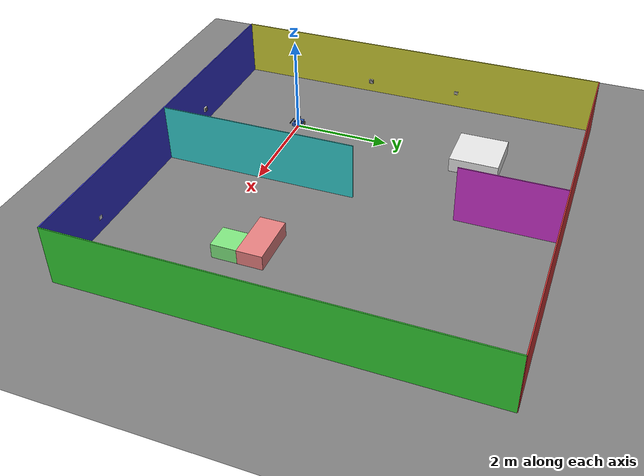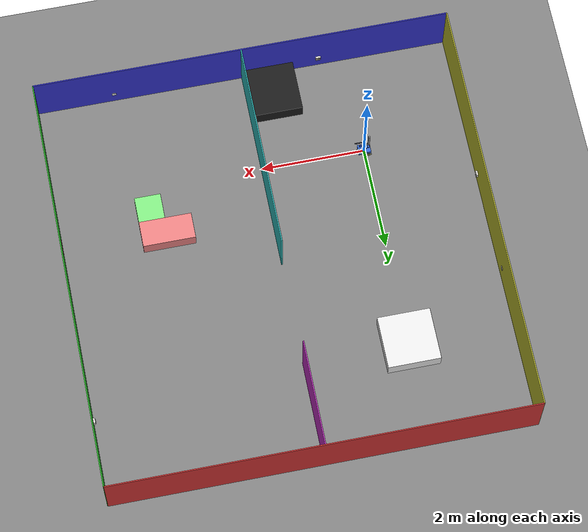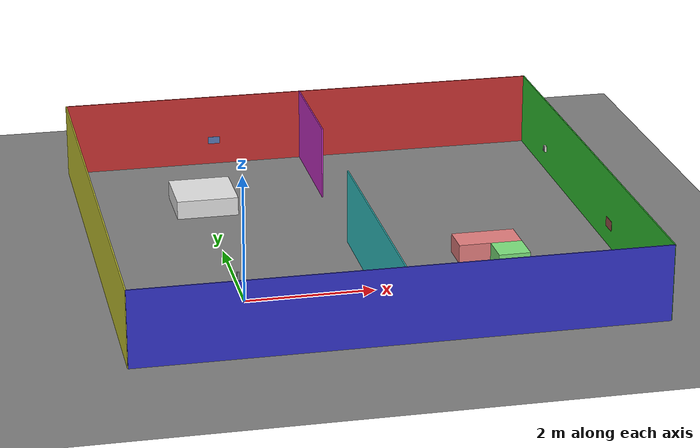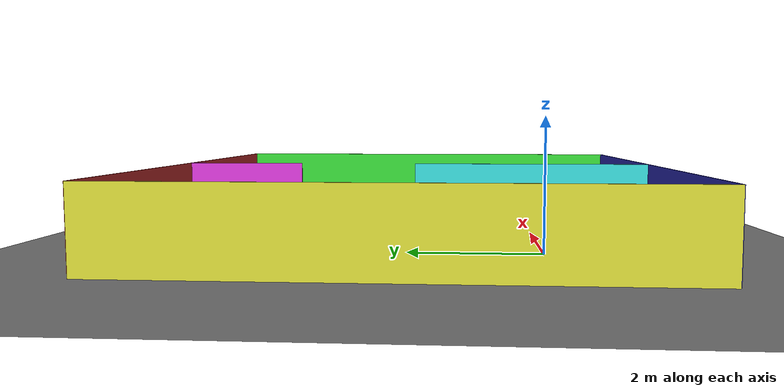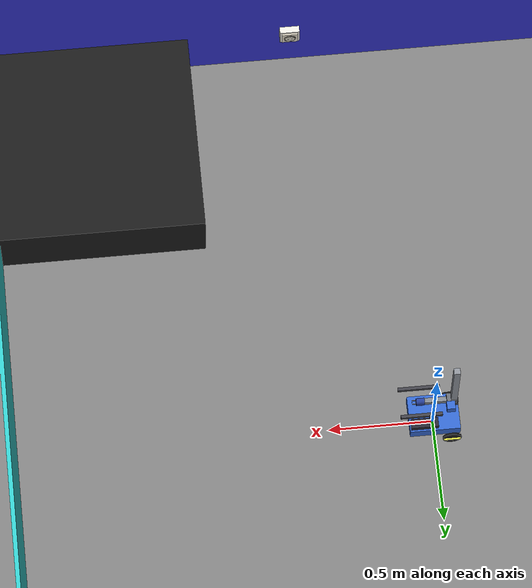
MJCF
<mujoco>
  <include file="world.xml"/>
  <worldbody>

    <!-- Light the whole area -->
    <light dir="0 0 -1" directional="true"/>

    <!--  Walls  -->

    <!-- Wall north (red)  -->
    <body name="wall-north" pos="2.0 6.0 0.6">
      <geom type="box" size="4.0 0.01 0.6" rgba="0.8 0.2 0.2 1"/>
    </body>

    <!-- Wall east (green) -->
    <body name="wall-east" pos="6.0 2.0 0.6">
      <geom type="box" size="0.01 4.0 0.6" rgba="0.2 0.8 0.2 1"/>
    </body>

    <!-- Wall south (blue)  -->
    <body name="wall-south" pos="2.0 -2.0 0.6">
      <geom type="box" size="4.0 0.01 0.6" rgba="0.2 0.2 0.8 1"/>
    </body>

    <!-- Wall west (yellow) -->
    <body name="wall-west" pos="-2.0 2.0 0.6">
      <geom type="box" size="0.01 4.0 0.6" rgba="0.8 0.8 0.2 1"/>
    </body>

    <!-- Wall divider top (purple) -->
    <body name="wall-divider-top" pos="2.0 5.0 0.6">
      <geom type="box" size="0.01 1.0 0.6" rgba="0.8 0.2 0.8 1"/>
    </body>

    <!-- Wall divider bottom (cyan) -->
    <body name="wall-divider-bottom" pos="2.0 0.0 0.6">
      <geom type="box" size="0.01 2.0 0.6" rgba="0.2 0.8 0.8 1"/>
    </body>

    <!--  Obstacles  -->

    <!-- Corner box (black) -->
    <body name="corner-box" pos="1.5 -1.5 0.15">
      <geom type="box" size="0.5 0.5 0.15" rgba="0.1 0.1 0.1 1"/>
    </body>

    <!-- Floor box (white) -->
    <body name="floor-box" pos="0.0 4 0.15">
      <geom type="box" size="0.5 0.5 0.15" rgba="0.9 0.9 0.9 1"/>
    </body>

    <!-- L box north (light red) -->
    <body name="L-box-north" pos="4.0 1 0.15">
      <geom type="box" size="0.5 0.25 0.15" rgba="0.9 0.5 0.5 1"/>
    </body>

    <!-- L box side (light green) -->
    <body name="L-box-side" pos="4.25 0.5 0.15">
      <geom type="box" size="0.25 0.25 0.15" rgba="0.5 0.9 0.5 1"/>
    </body>

    <!-- Dockable sockets: invisible collision geometry aligned with the
         visual outlets below (generated file — see header). -->
    <include file="schuko_sockets.xml"/>

    <!-- Outlet A: west wall, room 1. Bright white, slightly oversized plate. -->
    <body name="outlet_a" pos="-1.953 1.0 0.26" euler="0 0 0">
      <geom name="outlet_a_housing" type="box" size="0.0165 0.048 0.048"
            pos="-0.0205 0 0" rgba="0.91 0.90 0.87 1" contype="0" conaffinity="0"/>
      <geom name="outlet_a_plate" type="box" size="0.004 0.042 0.042"
            rgba="0.97 0.96 0.94 1" contype="0" conaffinity="0"/>
      <geom name="outlet_a_well" type="cylinder" size="0.028 0.0015" zaxis="1 0 0"
            pos="0.0045 0 0" rgba="0.78 0.77 0.74 1" contype="0" conaffinity="0"/>
      <geom name="outlet_a_wellfloor" type="cylinder" size="0.024 0.0015" zaxis="1 0 0"
            pos="0.0058 0 0" rgba="0.90 0.89 0.86 1" contype="0" conaffinity="0"/>
      <geom name="outlet_a_hole_l" type="cylinder" size="0.0024 0.0015" zaxis="1 0 0"
            pos="0.0068 0.0095 0" rgba="0.08 0.08 0.08 1" contype="0" conaffinity="0"/>
      <geom name="outlet_a_hole_r" type="cylinder" size="0.0024 0.0015" zaxis="1 0 0"
            pos="0.0068 -0.0095 0" rgba="0.08 0.08 0.08 1" contype="0" conaffinity="0"/>
      <geom name="outlet_a_clip_top" type="box" size="0.0018 0.005 0.0015"
            pos="0.0062 0 0.024" rgba="0.60 0.61 0.63 1" contype="0" conaffinity="0"/>
      <geom name="outlet_a_clip_bot" type="box" size="0.0018 0.005 0.0015"
            pos="0.0062 0 -0.024" rgba="0.60 0.61 0.63 1" contype="0" conaffinity="0"/>
    </body>

    <!-- Outlet B: south wall, room 1. Warm cream, slightly undersized plate. -->
    <body name="outlet_b" pos="0.5 -1.953 0.30" euler="0 0 90">
      <geom name="outlet_b_housing" type="box" size="0.0165 0.048 0.048"
            pos="-0.0205 0 0" rgba="0.91 0.90 0.87 1" contype="0" conaffinity="0"/>
      <geom name="outlet_b_plate" type="box" size="0.004 0.038 0.038"
            rgba="0.89 0.86 0.79 1" contype="0" conaffinity="0"/>
      <geom name="outlet_b_well" type="cylinder" size="0.028 0.0015" zaxis="1 0 0"
            pos="0.0045 0 0" rgba="0.70 0.68 0.62 1" contype="0" conaffinity="0"/>
      <geom name="outlet_b_wellfloor" type="cylinder" size="0.024 0.0015" zaxis="1 0 0"
            pos="0.0058 0 0" rgba="0.83 0.81 0.75 1" contype="0" conaffinity="0"/>
      <geom name="outlet_b_hole_l" type="cylinder" size="0.0024 0.0015" zaxis="1 0 0"
            pos="0.0068 0.0095 0" rgba="0.08 0.08 0.08 1" contype="0" conaffinity="0"/>
      <geom name="outlet_b_hole_r" type="cylinder" size="0.0024 0.0015" zaxis="1 0 0"
            pos="0.0068 -0.0095 0" rgba="0.08 0.08 0.08 1" contype="0" conaffinity="0"/>
      <geom name="outlet_b_clip_top" type="box" size="0.0018 0.005 0.0015"
            pos="0.0062 0 0.022" rgba="0.64 0.65 0.66 1" contype="0" conaffinity="0"/>
      <geom name="outlet_b_clip_bot" type="box" size="0.0018 0.005 0.0015"
            pos="0.0062 0 -0.022" rgba="0.64 0.65 0.66 1" contype="0" conaffinity="0"/>
    </body>

    <!-- Outlet C: east wall, room 2. Cool light gray, standard plate. -->
    <body name="outlet_c" pos="5.953 4.5 0.38" euler="0 0 180">
      <geom name="outlet_c_housing" type="box" size="0.0165 0.048 0.048"
            pos="-0.0205 0 0" rgba="0.91 0.90 0.87 1" contype="0" conaffinity="0"/>
      <geom name="outlet_c_plate" type="box" size="0.004 0.04 0.04"
            rgba="0.84 0.85 0.86 1" contype="0" conaffinity="0"/>
      <geom name="outlet_c_well" type="cylinder" size="0.028 0.0015" zaxis="1 0 0"
            pos="0.0045 0 0" rgba="0.66 0.67 0.69 1" contype="0" conaffinity="0"/>
      <geom name="outlet_c_wellfloor" type="cylinder" size="0.024 0.0015" zaxis="1 0 0"
            pos="0.0058 0 0" rgba="0.78 0.79 0.80 1" contype="0" conaffinity="0"/>
      <geom name="outlet_c_hole_l" type="cylinder" size="0.0024 0.0015" zaxis="1 0 0"
            pos="0.0068 0.0095 0" rgba="0.08 0.08 0.08 1" contype="0" conaffinity="0"/>
      <geom name="outlet_c_hole_r" type="cylinder" size="0.0024 0.0015" zaxis="1 0 0"
            pos="0.0068 -0.0095 0" rgba="0.08 0.08 0.08 1" contype="0" conaffinity="0"/>
      <geom name="outlet_c_clip_top" type="box" size="0.0018 0.005 0.0015"
            pos="0.0062 0 0.024" rgba="0.58 0.59 0.61 1" contype="0" conaffinity="0"/>
      <geom name="outlet_c_clip_bot" type="box" size="0.0018 0.005 0.0015"
            pos="0.0062 0 -0.024" rgba="0.58 0.59 0.61 1" contype="0" conaffinity="0"/>
    </body>

    <!--  Wall decoys: hard negatives, same species as training's.
          The detector must stay silent on all of these.  -->

    <!-- Light switch: west wall, room 1 (plate + rocker) -->
    <body name="decoy_switch_w" pos="-1.986 3.0 0.34" euler="0 0 0">
      <geom name="decoy_switch_w_plate" type="box" size="0.004 0.04 0.04"
            rgba="0.92 0.91 0.88 1" contype="0" conaffinity="0"/>
      <geom name="decoy_switch_w_rocker" type="box" size="0.004 0.018 0.026"
            pos="0.004 0 0" rgba="0.92 0.91 0.88 1" contype="0" conaffinity="0"/>
    </body>

    <!-- Blank plate: south wall, room 2 -->
    <body name="decoy_blank_s" pos="4.5 -1.986 0.28" euler="0 0 90">
      <geom name="decoy_blank_s_plate" type="box" size="0.004 0.04 0.04"
            rgba="0.88 0.88 0.90 1" contype="0" conaffinity="0"/>
    </body>

    <!-- Pictures: north wall room 1, east wall room 2 -->
    <body name="decoy_pic_n" pos="0.5 5.988 0.42" euler="0 0 270">
      <geom name="decoy_pic_n_canvas" type="box" size="0.002 0.10 0.06"
            rgba="0.35 0.48 0.72 1" contype="0" conaffinity="0"/>
    </body>
    <body name="decoy_pic_e" pos="5.988 1.0 0.36" euler="0 0 180">
      <geom name="decoy_pic_e_canvas" type="box" size="0.002 0.14 0.08"
            rgba="0.62 0.33 0.30 1" contype="0" conaffinity="0"/>
    </body>

  </worldbody>
</mujoco>

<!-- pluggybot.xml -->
<mujocoinclude>
  <visual><global offwidth="1280" offheight="720"/></visual>

  <worldbody>

    <!-- origin at axle height (aka wheel radius) -->
    <body name="pluggybot" pos="0 0 0.045">
      <freejoint />

      <!-- For the gyroscope  -->
      <site name="imu" pos="0 0 0.05"/>

      <geom
        name="chassis"
        type="box"
        size="0.12 0.09 0.03"
        pos="0 0 0.045"
        mass="0.9"
        rgba="0.2 0.4 0.8 1"
      />

      <geom
        name="battery"
        type="box"
        size="0.065 0.023 0.013"
        pos="0.05 0.06 0.092"
        mass="0.40"
        rgba="0.15 0.15 0.2 1"
      />

      <!--  Head  -->
      <body name="head" pos="-0.08 0 0.135">
        <geom
          name="head_mount"
          type="box"
          size="0.02 0.02 0.02"
          pos="0 0 0"
          mass="0.12"
          rgba="0.2 0.4 0.8 1"
        />

        <!--  Cameras  -->
        <!--  Decoding xyaxes="0 -1 0  0 0 1":
                image-right is body −y, image-up is body +z,
                which forces the viewing direction to be body +x
        -->
        <camera name="left_eye" pos="0.03 0.03 0" xyaxes="0 -1 0 0 0 1" fovy="41"/>
        <camera name="right_eye" pos="0.03 -0.03 0" xyaxes="0 -1 0 0 0 1" fovy="41"/>

      </body>

      <body name="left_wheel" pos="-0.08 0.105 0">
        <joint
          name="left_wheel_joint"
          type="hinge"
          axis="0 1 0"
          armature="0.012"
          damping="0.05"
        />
        <geom
          type="cylinder"
          size="0.045 0.005"
          zaxis="0 1 0"
          mass="0.05"
          rgba="0.1 0.1 0.1 1"
        />
        <!-- Spoke - purely visual, to see rotation  -->
        <geom
          type="box"
          size="0.04 0.013 0.004"
          mass="0.001"
          contype="0"
          conaffinity="0"
          rgba="1 1 0.3 1"
        />
      </body>

      <body name="right_wheel" pos="-0.08 -0.105 0">
        <joint
          name="right_wheel_joint"
          type="hinge"
          axis="0 1 0"
          armature="0.012"
          damping="0.05"
        />
        <geom
          type="cylinder"
          size="0.045 0.005"
          zaxis="0 1 0"
          mass="0.05"
          rgba="0.1 0.1 0.1 1"
        />
        <!-- Spoke - purely visual, to see rotation  -->
        <geom
          type="box"
          size="0.04 0.013 0.004"
          mass="0.001"
          contype="0"
          conaffinity="0"
          rgba="1 1 0.3 1"
        />
      </body>

      <geom
        name="caster"
        type="sphere"
        size="0.02"
        pos="0.10 0 -0.025"
        mass="0.02"
        condim="1"
        priority="1"
      />

      <!-- Mast: fixed column + lift motor block at its foot (igus NEMA11
           lead-screw class). Column top at body-local z=0.455. TBD masses. -->
      <geom name="mast" type="box" size="0.015 0.015 0.19"
            pos="-0.10 -0.05 0.265" mass="0.20" rgba="0.55 0.57 0.6 1"/>
      <geom name="lift_motor" type="box" size="0.015 0.02 0.02"
            pos="-0.105 -0.05 0.095" mass="0.15" rgba="0.3 0.3 0.32 1"/>

      <body name="carriage" pos="-0.10 -0.05 0.10">
        <joint name="lift_joint" type="slide" axis="0 0 1" range="0 0.31"
               damping="10"/>
        <geom name="carriage_block" type="box" size="0.025 0.02 0.022"
              pos="0.01 0 0.008" mass="0.25" rgba="0.4 0.42 0.45 1"/>

        <geom name="prong_l" type="box" size="0.10 0.008 0.008"
              pos="0.16 0.07 0" mass="0.01" friction="1.5" rgba="0.25 0.25 0.28 1"/>
        <geom name="prong_r" type="box" size="0.10 0.008 0.008"
              pos="0.16 -0.07 0" mass="0.01" friction="1.5" rgba="0.25 0.25 0.28 1"/>

        <camera name="dock_eye" pos="0.03 0 0.06" xyaxes="0 -1 0 0 0 1" fovy="41"/>

        <!-- Telescoping arm: short tube, 0.20 m stroke. Retracted, the plug
             tip sits at body-local +0.059 — safely behind the +0.12 bumper. -->
        <body name="arm" pos="0 0 0">
          <joint name="arm_joint" type="slide" axis="1 0 0" range="0 0.20"
                 damping="5"/>
          <geom name="arm_tube" type="box" size="0.06 0.012 0.012"
                pos="0.08 0 0" mass="0.12" rgba="0.5 0.52 0.55 1"/>

          <body name="plug" pos="0.14 0 0">
            <joint name="plug_lat_y" type="slide" axis="0 1 0" range="-0.02 0.02"
                   stiffness="150" damping="4" armature="1e-5"/>
            <joint name="plug_lat_z" type="slide" axis="0 0 1" range="-0.02 0.02"
                   stiffness="150" damping="4" armature="1e-5"/>
            <joint name="plug_rot_z" type="hinge" axis="0 0 1" range="-0.35 0.35"
                   stiffness="1.0" damping="0.05" armature="1e-5"/>
            <joint name="plug_rot_y" type="hinge" axis="0 1 0" range="-0.35 0.35"
                   stiffness="1.0" damping="0.05" armature="1e-5"/>
            <geom name="plug_body" type="cylinder" size="0.01775 0.020"
                  zaxis="1 0 0" pos="0.02 0 0" mass="0.05" rgba="0.15 0.25 0.6 1"/>
            <geom name="plug_pin_l" type="capsule" size="0.0024"
                  fromto="0.0424 0.0095 0 0.0566 0.0095 0" mass="0.003"
                  rgba="0.75 0.75 0.78 1"/>
            <geom name="plug_pin_r" type="capsule" size="0.0024"
                  fromto="0.0424 -0.0095 0 0.0566 -0.0095 0" mass="0.003"
                  rgba="0.75 0.75 0.78 1"/>
            <site name="plug_face" pos="0.04 0 0" size="0.002"/>
            <site name="plug_tip" pos="0.059 0 0" size="0.002"/>
          </body>
        </body>
      </body>

    </body>
  </worldbody>

  <!-- The arm tube passes beside the mast on a carriage bracket in the real
       igus unit; as primitives on one axis they would interpenetrate. -->
  <contact>
    <exclude body1="pluggybot" body2="arm"/>
  </contact>

  <actuator>
    <velocity
      name="left_motor"
      joint="left_wheel_joint"
      kv="0.5"
      ctrlrange="-21 21"
      forcerange="-2.06 2.06"
    />
    <velocity
      name="right_motor"
      joint="right_wheel_joint"
      kv="0.5"
      ctrlrange="-21 21"
      forcerange="-2.06 2.06"
    />
    <!-- Lift + arm: position servos (a stepper lead-screw IS a position
         device). forcerange from the igus DLE-LA-0001 spec: 50 N thrust.
         ctrl is the joint target in meters. -->
    <position
      name="lift"
      joint="lift_joint"
      kp="1200"
      kv="60"
      ctrlrange="0 0.31"
      forcerange="-50 50"
    />
    <position
      name="arm"
      joint="arm_joint"
      kp="1200"
      kv="60"
      ctrlrange="0 0.20"
      forcerange="-50 50"
    />
  </actuator>

  <sensor>
    <gyro name="imu_gyro" site="imu"/>
  </sensor>

</mujocoinclude>

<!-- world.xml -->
<mujoco>

  <!-- Needed to fix wheel physics
        https://mujoco.readthedocs.io/en/stable/computation/index.html#numerical-integration
  -->
  <option integrator="implicitfast"/>

  <include file="pluggybot.xml" />

  <worldbody>

    <!-- directional light -->
    <light pos="0 0 3" dir="0 0 -1"/>

    <!-- The ground -->
    <geom name="floor" type="plane" size="10 10 0.1" rgba="0.5 0.5 0.5 1"/>

  </worldbody>
</mujoco>

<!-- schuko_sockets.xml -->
<mujocoinclude>
  <body name="socket_a" pos="-1.9530 1.0000 0.2600" euler="0 0 0.0">
      <geom name="socket_a_wall0" type="box" size="0.00850 0.00200 0.00723" pos="-0.00850 0.02050 0.00000" euler="0.00 0 0.00" rgba="0.5 0.5 0.5 0" solref="0.005 1" friction="0.3"/>
      <geom name="socket_a_wall1" type="box" size="0.00850 0.00200 0.00723" pos="-0.00850 0.01775 0.01025" euler="30.00 0 0.00" rgba="0.5 0.5 0.5 0" solref="0.005 1" friction="0.3"/>
      <geom name="socket_a_wall2" type="box" size="0.00850 0.00200 0.00723" pos="-0.00850 0.01025 0.01775" euler="60.00 0 0.00" rgba="0.5 0.5 0.5 0" solref="0.005 1" friction="0.3"/>
      <geom name="socket_a_wall3" type="box" size="0.00850 0.00200 0.00723" pos="-0.00850 0.00000 0.02050" euler="90.00 0 0.00" rgba="0.5 0.5 0.5 0" solref="0.005 1" friction="0.3"/>
      <geom name="socket_a_wall4" type="box" size="0.00850 0.00200 0.00723" pos="-0.00850 -0.01025 0.01775" euler="120.00 0 0.00" rgba="0.5 0.5 0.5 0" solref="0.005 1" friction="0.3"/>
      <geom name="socket_a_wall5" type="box" size="0.00850 0.00200 0.00723" pos="-0.00850 -0.01775 0.01025" euler="150.00 0 0.00" rgba="0.5 0.5 0.5 0" solref="0.005 1" friction="0.3"/>
      <geom name="socket_a_wall6" type="box" size="0.00850 0.00200 0.00723" pos="-0.00850 -0.02050 0.00000" euler="180.00 0 0.00" rgba="0.5 0.5 0.5 0" solref="0.005 1" friction="0.3"/>
      <geom name="socket_a_wall7" type="box" size="0.00850 0.00200 0.00723" pos="-0.00850 -0.01775 -0.01025" euler="210.00 0 0.00" rgba="0.5 0.5 0.5 0" solref="0.005 1" friction="0.3"/>
      <geom name="socket_a_wall8" type="box" size="0.00850 0.00200 0.00723" pos="-0.00850 -0.01025 -0.01775" euler="240.00 0 0.00" rgba="0.5 0.5 0.5 0" solref="0.005 1" friction="0.3"/>
      <geom name="socket_a_wall9" type="box" size="0.00850 0.00200 0.00723" pos="-0.00850 -0.00000 -0.02050" euler="270.00 0 0.00" rgba="0.5 0.5 0.5 0" solref="0.005 1" friction="0.3"/>
      <geom name="socket_a_wall10" type="box" size="0.00850 0.00200 0.00723" pos="-0.00850 0.01025 -0.01775" euler="300.00 0 0.00" rgba="0.5 0.5 0.5 0" solref="0.005 1" friction="0.3"/>
      <geom name="socket_a_wall11" type="box" size="0.00850 0.00200 0.00723" pos="-0.00850 0.01775 -0.01025" euler="330.00 0 0.00" rgba="0.5 0.5 0.5 0" solref="0.005 1" friction="0.3"/>
      <geom name="socket_a_funnel0" type="box" size="0.00141 0.00200 0.00659" pos="0.00100 0.02150 0.00000" euler="0.00 0 45.00" rgba="0.5 0.5 0.5 0" solref="0.005 1" friction="0.3"/>
      <geom name="socket_a_funnel1" type="box" size="0.00141 0.00200 0.00659" pos="0.00100 0.01862 0.01075" euler="30.00 0 45.00" rgba="0.5 0.5 0.5 0" solref="0.005 1" friction="0.3"/>
      <geom name="socket_a_funnel2" type="box" size="0.00141 0.00200 0.00659" pos="0.00100 0.01075 0.01862" euler="60.00 0 45.00" rgba="0.5 0.5 0.5 0" solref="0.005 1" friction="0.3"/>
      <geom name="socket_a_funnel3" type="box" size="0.00141 0.00200 0.00659" pos="0.00100 0.00000 0.02150" euler="90.00 0 45.00" rgba="0.5 0.5 0.5 0" solref="0.005 1" friction="0.3"/>
      <geom name="socket_a_funnel4" type="box" size="0.00141 0.00200 0.00659" pos="0.00100 -0.01075 0.01862" euler="120.00 0 45.00" rgba="0.5 0.5 0.5 0" solref="0.005 1" friction="0.3"/>
      <geom name="socket_a_funnel5" type="box" size="0.00141 0.00200 0.00659" pos="0.00100 -0.01862 0.01075" euler="150.00 0 45.00" rgba="0.5 0.5 0.5 0" solref="0.005 1" friction="0.3"/>
      <geom name="socket_a_funnel6" type="box" size="0.00141 0.00200 0.00659" pos="0.00100 -0.02150 0.00000" euler="180.00 0 45.00" rgba="0.5 0.5 0.5 0" solref="0.005 1" friction="0.3"/>
      <geom name="socket_a_funnel7" type="box" size="0.00141 0.00200 0.00659" pos="0.00100 -0.01862 -0.01075" euler="210.00 0 45.00" rgba="0.5 0.5 0.5 0" solref="0.005 1" friction="0.3"/>
      <geom name="socket_a_funnel8" type="box" size="0.00141 0.00200 0.00659" pos="0.00100 -0.01075 -0.01862" euler="240.00 0 45.00" rgba="0.5 0.5 0.5 0" solref="0.005 1" friction="0.3"/>
      <geom name="socket_a_funnel9" type="box" size="0.00141 0.00200 0.00659" pos="0.00100 -0.00000 -0.02150" euler="270.00 0 45.00" rgba="0.5 0.5 0.5 0" solref="0.005 1" friction="0.3"/>
      <geom name="socket_a_funnel10" type="box" size="0.00141 0.00200 0.00659" pos="0.00100 0.01075 -0.01862" euler="300.00 0 45.00" rgba="0.5 0.5 0.5 0" solref="0.005 1" friction="0.3"/>
      <geom name="socket_a_funnel11" type="box" size="0.00141 0.00200 0.00659" pos="0.00100 0.01862 -0.01075" euler="330.00 0 45.00" rgba="0.5 0.5 0.5 0" solref="0.005 1" friction="0.3"/>
      <geom name="socket_a_floor_top" type="box" size="0.01 0.03 0.01360"
            pos="-0.02700 0 0.01640" rgba="0.5 0.5 0.5 0" solref="0.005 1" friction="0.3"/>
      <geom name="socket_a_floor_bot" type="box" size="0.01 0.03 0.01360"
            pos="-0.02700 0 -0.01640" rgba="0.5 0.5 0.5 0" solref="0.005 1" friction="0.3"/>
      <geom name="socket_a_floor_mid" type="box" size="0.01 0.00670 0.00280"
            pos="-0.02700 0 0" rgba="0.5 0.5 0.5 0" solref="0.005 1" friction="0.3"/>
      <geom name="socket_a_floor_l" type="box" size="0.01 0.00885 0.00280"
            pos="-0.02700 0.02115 0" rgba="0.5 0.5 0.5 0" solref="0.005 1" friction="0.3"/>
      <geom name="socket_a_floor_r" type="box" size="0.01 0.00885 0.00280"
            pos="-0.02700 -0.02115 0" rgba="0.5 0.5 0.5 0" solref="0.005 1" friction="0.3"/>
      <geom name="socket_a_plate_t" type="box" size="0.001 0.055 0.01675"
            pos="0.00300 0 0.03825" rgba="0.5 0.5 0.5 0" solref="0.005 1" friction="0.3"/>
      <geom name="socket_a_plate_b" type="box" size="0.001 0.055 0.01675"
            pos="0.00300 0 -0.03825" rgba="0.5 0.5 0.5 0" solref="0.005 1" friction="0.3"/>
      <geom name="socket_a_plate_l" type="box" size="0.001 0.01675 0.02150"
            pos="0.00300 0.03825 0" rgba="0.5 0.5 0.5 0" solref="0.005 1" friction="0.3"/>
      <geom name="socket_a_plate_r" type="box" size="0.001 0.01675 0.02150"
            pos="0.00300 -0.03825 0" rgba="0.5 0.5 0.5 0" solref="0.005 1" friction="0.3"/>
  </body>
  <body name="socket_b" pos="0.5000 -1.9530 0.3000" euler="0 0 90.0">
      <geom name="socket_b_wall0" type="box" size="0.00850 0.00200 0.00723" pos="-0.00850 0.02050 0.00000" euler="0.00 0 0.00" rgba="0.5 0.5 0.5 0" solref="0.005 1" friction="0.3"/>
      <geom name="socket_b_wall1" type="box" size="0.00850 0.00200 0.00723" pos="-0.00850 0.01775 0.01025" euler="30.00 0 0.00" rgba="0.5 0.5 0.5 0" solref="0.005 1" friction="0.3"/>
      <geom name="socket_b_wall2" type="box" size="0.00850 0.00200 0.00723" pos="-0.00850 0.01025 0.01775" euler="60.00 0 0.00" rgba="0.5 0.5 0.5 0" solref="0.005 1" friction="0.3"/>
      <geom name="socket_b_wall3" type="box" size="0.00850 0.00200 0.00723" pos="-0.00850 0.00000 0.02050" euler="90.00 0 0.00" rgba="0.5 0.5 0.5 0" solref="0.005 1" friction="0.3"/>
      <geom name="socket_b_wall4" type="box" size="0.00850 0.00200 0.00723" pos="-0.00850 -0.01025 0.01775" euler="120.00 0 0.00" rgba="0.5 0.5 0.5 0" solref="0.005 1" friction="0.3"/>
      <geom name="socket_b_wall5" type="box" size="0.00850 0.00200 0.00723" pos="-0.00850 -0.01775 0.01025" euler="150.00 0 0.00" rgba="0.5 0.5 0.5 0" solref="0.005 1" friction="0.3"/>
      <geom name="socket_b_wall6" type="box" size="0.00850 0.00200 0.00723" pos="-0.00850 -0.02050 0.00000" euler="180.00 0 0.00" rgba="0.5 0.5 0.5 0" solref="0.005 1" friction="0.3"/>
      <geom name="socket_b_wall7" type="box" size="0.00850 0.00200 0.00723" pos="-0.00850 -0.01775 -0.01025" euler="210.00 0 0.00" rgba="0.5 0.5 0.5 0" solref="0.005 1" friction="0.3"/>
      <geom name="socket_b_wall8" type="box" size="0.00850 0.00200 0.00723" pos="-0.00850 -0.01025 -0.01775" euler="240.00 0 0.00" rgba="0.5 0.5 0.5 0" solref="0.005 1" friction="0.3"/>
      <geom name="socket_b_wall9" type="box" size="0.00850 0.00200 0.00723" pos="-0.00850 -0.00000 -0.02050" euler="270.00 0 0.00" rgba="0.5 0.5 0.5 0" solref="0.005 1" friction="0.3"/>
      <geom name="socket_b_wall10" type="box" size="0.00850 0.00200 0.00723" pos="-0.00850 0.01025 -0.01775" euler="300.00 0 0.00" rgba="0.5 0.5 0.5 0" solref="0.005 1" friction="0.3"/>
      <geom name="socket_b_wall11" type="box" size="0.00850 0.00200 0.00723" pos="-0.00850 0.01775 -0.01025" euler="330.00 0 0.00" rgba="0.5 0.5 0.5 0" solref="0.005 1" friction="0.3"/>
      <geom name="socket_b_funnel0" type="box" size="0.00141 0.00200 0.00659" pos="0.00100 0.02150 0.00000" euler="0.00 0 45.00" rgba="0.5 0.5 0.5 0" solref="0.005 1" friction="0.3"/>
      <geom name="socket_b_funnel1" type="box" size="0.00141 0.00200 0.00659" pos="0.00100 0.01862 0.01075" euler="30.00 0 45.00" rgba="0.5 0.5 0.5 0" solref="0.005 1" friction="0.3"/>
      <geom name="socket_b_funnel2" type="box" size="0.00141 0.00200 0.00659" pos="0.00100 0.01075 0.01862" euler="60.00 0 45.00" rgba="0.5 0.5 0.5 0" solref="0.005 1" friction="0.3"/>
      <geom name="socket_b_funnel3" type="box" size="0.00141 0.00200 0.00659" pos="0.00100 0.00000 0.02150" euler="90.00 0 45.00" rgba="0.5 0.5 0.5 0" solref="0.005 1" friction="0.3"/>
      <geom name="socket_b_funnel4" type="box" size="0.00141 0.00200 0.00659" pos="0.00100 -0.01075 0.01862" euler="120.00 0 45.00" rgba="0.5 0.5 0.5 0" solref="0.005 1" friction="0.3"/>
      <geom name="socket_b_funnel5" type="box" size="0.00141 0.00200 0.00659" pos="0.00100 -0.01862 0.01075" euler="150.00 0 45.00" rgba="0.5 0.5 0.5 0" solref="0.005 1" friction="0.3"/>
      <geom name="socket_b_funnel6" type="box" size="0.00141 0.00200 0.00659" pos="0.00100 -0.02150 0.00000" euler="180.00 0 45.00" rgba="0.5 0.5 0.5 0" solref="0.005 1" friction="0.3"/>
      <geom name="socket_b_funnel7" type="box" size="0.00141 0.00200 0.00659" pos="0.00100 -0.01862 -0.01075" euler="210.00 0 45.00" rgba="0.5 0.5 0.5 0" solref="0.005 1" friction="0.3"/>
      <geom name="socket_b_funnel8" type="box" size="0.00141 0.00200 0.00659" pos="0.00100 -0.01075 -0.01862" euler="240.00 0 45.00" rgba="0.5 0.5 0.5 0" solref="0.005 1" friction="0.3"/>
      <geom name="socket_b_funnel9" type="box" size="0.00141 0.00200 0.00659" pos="0.00100 -0.00000 -0.02150" euler="270.00 0 45.00" rgba="0.5 0.5 0.5 0" solref="0.005 1" friction="0.3"/>
      <geom name="socket_b_funnel10" type="box" size="0.00141 0.00200 0.00659" pos="0.00100 0.01075 -0.01862" euler="300.00 0 45.00" rgba="0.5 0.5 0.5 0" solref="0.005 1" friction="0.3"/>
      <geom name="socket_b_funnel11" type="box" size="0.00141 0.00200 0.00659" pos="0.00100 0.01862 -0.01075" euler="330.00 0 45.00" rgba="0.5 0.5 0.5 0" solref="0.005 1" friction="0.3"/>
      <geom name="socket_b_floor_top" type="box" size="0.01 0.03 0.01360"
            pos="-0.02700 0 0.01640" rgba="0.5 0.5 0.5 0" solref="0.005 1" friction="0.3"/>
      <geom name="socket_b_floor_bot" type="box" size="0.01 0.03 0.01360"
            pos="-0.02700 0 -0.01640" rgba="0.5 0.5 0.5 0" solref="0.005 1" friction="0.3"/>
      <geom name="socket_b_floor_mid" type="box" size="0.01 0.00670 0.00280"
            pos="-0.02700 0 0" rgba="0.5 0.5 0.5 0" solref="0.005 1" friction="0.3"/>
      <geom name="socket_b_floor_l" type="box" size="0.01 0.00885 0.00280"
            pos="-0.02700 0.02115 0" rgba="0.5 0.5 0.5 0" solref="0.005 1" friction="0.3"/>
      <geom name="socket_b_floor_r" type="box" size="0.01 0.00885 0.00280"
            pos="-0.02700 -0.02115 0" rgba="0.5 0.5 0.5 0" solref="0.005 1" friction="0.3"/>
      <geom name="socket_b_plate_t" type="box" size="0.001 0.055 0.01675"
            pos="0.00300 0 0.03825" rgba="0.5 0.5 0.5 0" solref="0.005 1" friction="0.3"/>
      <geom name="socket_b_plate_b" type="box" size="0.001 0.055 0.01675"
            pos="0.00300 0 -0.03825" rgba="0.5 0.5 0.5 0" solref="0.005 1" friction="0.3"/>
      <geom name="socket_b_plate_l" type="box" size="0.001 0.01675 0.02150"
            pos="0.00300 0.03825 0" rgba="0.5 0.5 0.5 0" solref="0.005 1" friction="0.3"/>
      <geom name="socket_b_plate_r" type="box" size="0.001 0.01675 0.02150"
            pos="0.00300 -0.03825 0" rgba="0.5 0.5 0.5 0" solref="0.005 1" friction="0.3"/>
  </body>
  <body name="socket_c" pos="5.9530 4.5000 0.3800" euler="0 0 180.0">
      <geom name="socket_c_wall0" type="box" size="0.00850 0.00200 0.00723" pos="-0.00850 0.02050 0.00000" euler="0.00 0 0.00" rgba="0.5 0.5 0.5 0" solref="0.005 1" friction="0.3"/>
      <geom name="socket_c_wall1" type="box" size="0.00850 0.00200 0.00723" pos="-0.00850 0.01775 0.01025" euler="30.00 0 0.00" rgba="0.5 0.5 0.5 0" solref="0.005 1" friction="0.3"/>
      <geom name="socket_c_wall2" type="box" size="0.00850 0.00200 0.00723" pos="-0.00850 0.01025 0.01775" euler="60.00 0 0.00" rgba="0.5 0.5 0.5 0" solref="0.005 1" friction="0.3"/>
      <geom name="socket_c_wall3" type="box" size="0.00850 0.00200 0.00723" pos="-0.00850 0.00000 0.02050" euler="90.00 0 0.00" rgba="0.5 0.5 0.5 0" solref="0.005 1" friction="0.3"/>
      <geom name="socket_c_wall4" type="box" size="0.00850 0.00200 0.00723" pos="-0.00850 -0.01025 0.01775" euler="120.00 0 0.00" rgba="0.5 0.5 0.5 0" solref="0.005 1" friction="0.3"/>
      <geom name="socket_c_wall5" type="box" size="0.00850 0.00200 0.00723" pos="-0.00850 -0.01775 0.01025" euler="150.00 0 0.00" rgba="0.5 0.5 0.5 0" solref="0.005 1" friction="0.3"/>
      <geom name="socket_c_wall6" type="box" size="0.00850 0.00200 0.00723" pos="-0.00850 -0.02050 0.00000" euler="180.00 0 0.00" rgba="0.5 0.5 0.5 0" solref="0.005 1" friction="0.3"/>
      <geom name="socket_c_wall7" type="box" size="0.00850 0.00200 0.00723" pos="-0.00850 -0.01775 -0.01025" euler="210.00 0 0.00" rgba="0.5 0.5 0.5 0" solref="0.005 1" friction="0.3"/>
      <geom name="socket_c_wall8" type="box" size="0.00850 0.00200 0.00723" pos="-0.00850 -0.01025 -0.01775" euler="240.00 0 0.00" rgba="0.5 0.5 0.5 0" solref="0.005 1" friction="0.3"/>
      <geom name="socket_c_wall9" type="box" size="0.00850 0.00200 0.00723" pos="-0.00850 -0.00000 -0.02050" euler="270.00 0 0.00" rgba="0.5 0.5 0.5 0" solref="0.005 1" friction="0.3"/>
      <geom name="socket_c_wall10" type="box" size="0.00850 0.00200 0.00723" pos="-0.00850 0.01025 -0.01775" euler="300.00 0 0.00" rgba="0.5 0.5 0.5 0" solref="0.005 1" friction="0.3"/>
      <geom name="socket_c_wall11" type="box" size="0.00850 0.00200 0.00723" pos="-0.00850 0.01775 -0.01025" euler="330.00 0 0.00" rgba="0.5 0.5 0.5 0" solref="0.005 1" friction="0.3"/>
      <geom name="socket_c_funnel0" type="box" size="0.00141 0.00200 0.00659" pos="0.00100 0.02150 0.00000" euler="0.00 0 45.00" rgba="0.5 0.5 0.5 0" solref="0.005 1" friction="0.3"/>
      <geom name="socket_c_funnel1" type="box" size="0.00141 0.00200 0.00659" pos="0.00100 0.01862 0.01075" euler="30.00 0 45.00" rgba="0.5 0.5 0.5 0" solref="0.005 1" friction="0.3"/>
      <geom name="socket_c_funnel2" type="box" size="0.00141 0.00200 0.00659" pos="0.00100 0.01075 0.01862" euler="60.00 0 45.00" rgba="0.5 0.5 0.5 0" solref="0.005 1" friction="0.3"/>
      <geom name="socket_c_funnel3" type="box" size="0.00141 0.00200 0.00659" pos="0.00100 0.00000 0.02150" euler="90.00 0 45.00" rgba="0.5 0.5 0.5 0" solref="0.005 1" friction="0.3"/>
      <geom name="socket_c_funnel4" type="box" size="0.00141 0.00200 0.00659" pos="0.00100 -0.01075 0.01862" euler="120.00 0 45.00" rgba="0.5 0.5 0.5 0" solref="0.005 1" friction="0.3"/>
      <geom name="socket_c_funnel5" type="box" size="0.00141 0.00200 0.00659" pos="0.00100 -0.01862 0.01075" euler="150.00 0 45.00" rgba="0.5 0.5 0.5 0" solref="0.005 1" friction="0.3"/>
      <geom name="socket_c_funnel6" type="box" size="0.00141 0.00200 0.00659" pos="0.00100 -0.02150 0.00000" euler="180.00 0 45.00" rgba="0.5 0.5 0.5 0" solref="0.005 1" friction="0.3"/>
      <geom name="socket_c_funnel7" type="box" size="0.00141 0.00200 0.00659" pos="0.00100 -0.01862 -0.01075" euler="210.00 0 45.00" rgba="0.5 0.5 0.5 0" solref="0.005 1" friction="0.3"/>
      <geom name="socket_c_funnel8" type="box" size="0.00141 0.00200 0.00659" pos="0.00100 -0.01075 -0.01862" euler="240.00 0 45.00" rgba="0.5 0.5 0.5 0" solref="0.005 1" friction="0.3"/>
      <geom name="socket_c_funnel9" type="box" size="0.00141 0.00200 0.00659" pos="0.00100 -0.00000 -0.02150" euler="270.00 0 45.00" rgba="0.5 0.5 0.5 0" solref="0.005 1" friction="0.3"/>
      <geom name="socket_c_funnel10" type="box" size="0.00141 0.00200 0.00659" pos="0.00100 0.01075 -0.01862" euler="300.00 0 45.00" rgba="0.5 0.5 0.5 0" solref="0.005 1" friction="0.3"/>
      <geom name="socket_c_funnel11" type="box" size="0.00141 0.00200 0.00659" pos="0.00100 0.01862 -0.01075" euler="330.00 0 45.00" rgba="0.5 0.5 0.5 0" solref="0.005 1" friction="0.3"/>
      <geom name="socket_c_floor_top" type="box" size="0.01 0.03 0.01360"
            pos="-0.02700 0 0.01640" rgba="0.5 0.5 0.5 0" solref="0.005 1" friction="0.3"/>
      <geom name="socket_c_floor_bot" type="box" size="0.01 0.03 0.01360"
            pos="-0.02700 0 -0.01640" rgba="0.5 0.5 0.5 0" solref="0.005 1" friction="0.3"/>
      <geom name="socket_c_floor_mid" type="box" size="0.01 0.00670 0.00280"
            pos="-0.02700 0 0" rgba="0.5 0.5 0.5 0" solref="0.005 1" friction="0.3"/>
      <geom name="socket_c_floor_l" type="box" size="0.01 0.00885 0.00280"
            pos="-0.02700 0.02115 0" rgba="0.5 0.5 0.5 0" solref="0.005 1" friction="0.3"/>
      <geom name="socket_c_floor_r" type="box" size="0.01 0.00885 0.00280"
            pos="-0.02700 -0.02115 0" rgba="0.5 0.5 0.5 0" solref="0.005 1" friction="0.3"/>
      <geom name="socket_c_plate_t" type="box" size="0.001 0.055 0.01675"
            pos="0.00300 0 0.03825" rgba="0.5 0.5 0.5 0" solref="0.005 1" friction="0.3"/>
      <geom name="socket_c_plate_b" type="box" size="0.001 0.055 0.01675"
            pos="0.00300 0 -0.03825" rgba="0.5 0.5 0.5 0" solref="0.005 1" friction="0.3"/>
      <geom name="socket_c_plate_l" type="box" size="0.001 0.01675 0.02150"
            pos="0.00300 0.03825 0" rgba="0.5 0.5 0.5 0" solref="0.005 1" friction="0.3"/>
      <geom name="socket_c_plate_r" type="box" size="0.001 0.01675 0.02150"
            pos="0.00300 -0.03825 0" rgba="0.5 0.5 0.5 0" solref="0.005 1" friction="0.3"/>
  </body>
</mujocoinclude>
